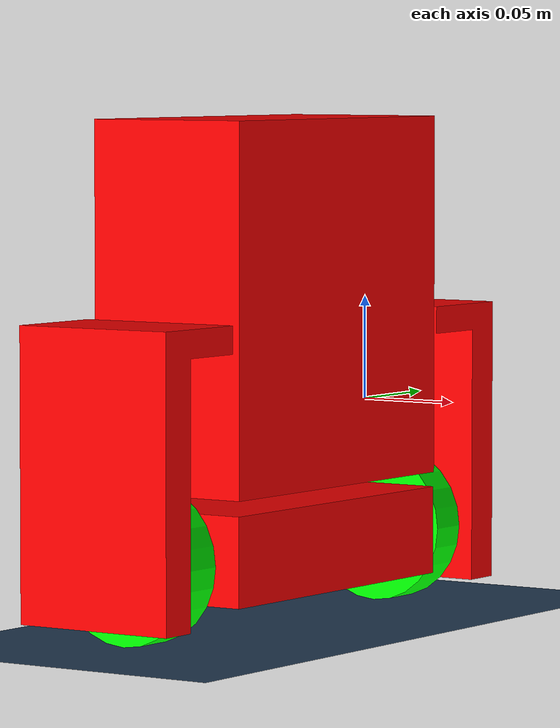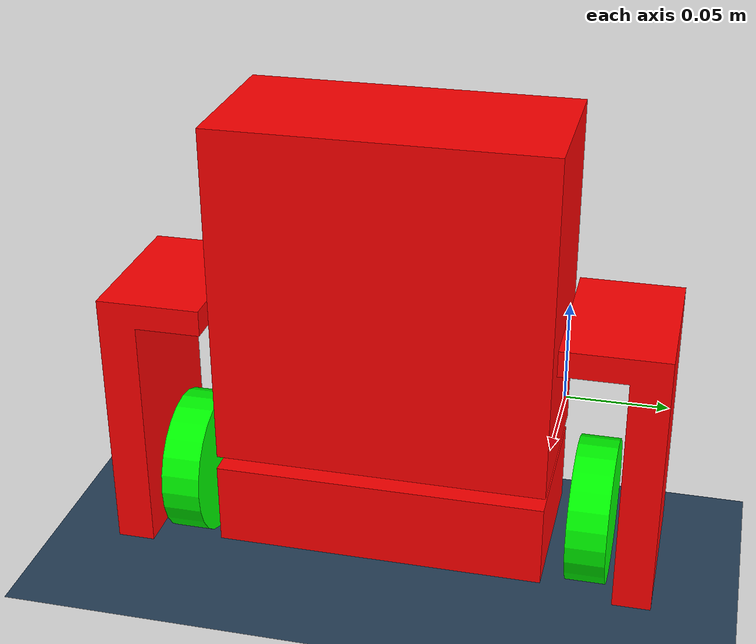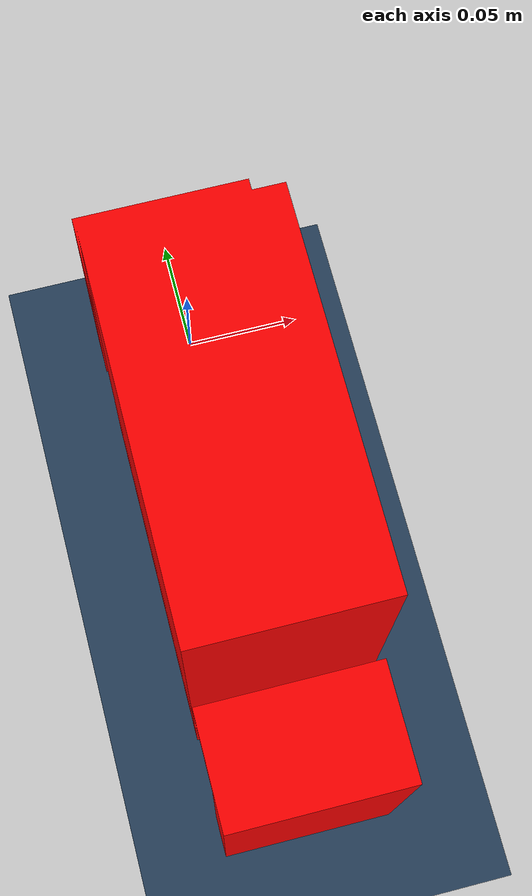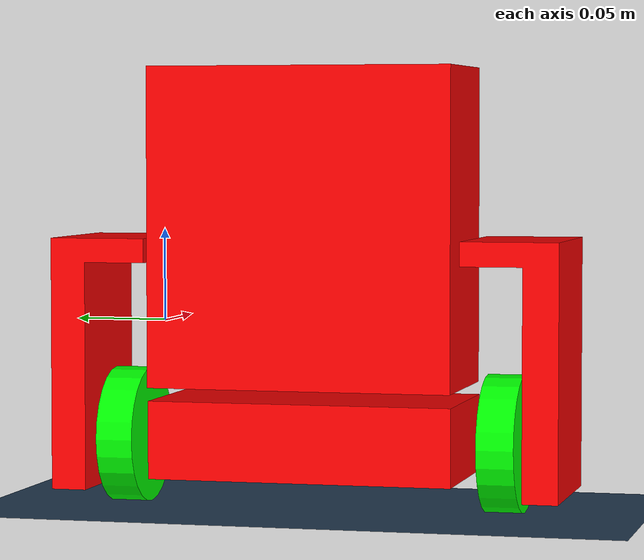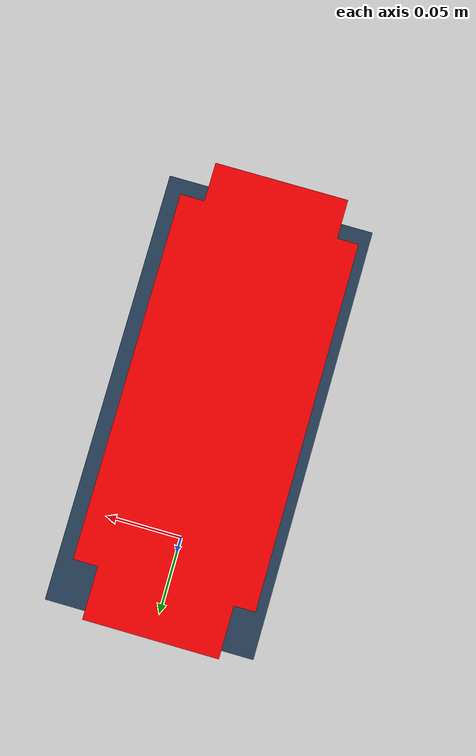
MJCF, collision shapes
<mujoco model="robot scene">
  <compiler angle="radian"/>
  <option timestep="0.000025"/>

  <include file="robot_cad.xml"/>

  <statistic center="0 0 0.1" extent="0.8"/>

  <visual>
    <headlight diffuse="0.6 0.6 0.6" ambient="0.3 0.3 0.3" specular="0 0 0"/>
    <rgba haze="0.15 0.25 0.35 1"/>
    <global azimuth="120" elevation="-20"/>
  </visual>

  <asset>
    <texture type="skybox" builtin="gradient" rgb1="0.8 0.8 0.8" rgb2="0 0 0" width="512" height="3072"/>
    <texture type="2d" name="groundplane" builtin="checker" mark="edge" rgb1="0.2 0.3 0.4" rgb2="0.1 0.2 0.3"
      markrgb="0.8 0.8 0.8" width="300" height="300"/>
    <material name="groundplane" texture="groundplane" texuniform="true" texrepeat="5 5" reflectance="0.2"/>
    <texture type="2d" name="wheel_texture" builtin="checker" mark="edge" rgb1="0.0 0.0 0.0" rgb2="0.2 0.2 0.2"
      markrgb="0.3 0.3 0.3" width="300" height="300"/>
    <material name="wheel_material" texture="wheel_texture" texuniform="true" texrepeat="5 5"/>
  </asset>

  <worldbody>
    <light pos="0 0 1.5" dir="-0.5 -0.5 -1" directional="true"/>
    <geom name="floor" size="0 0 0.05" pos="0 0 -0.1" type="plane" material="groundplane"/>
  </worldbody>

  <contact>
    <exclude body1="robot_body" body2="l_wheel"/>
    <exclude body1="robot_body" body2="r_wheel"/>

    <pair geom1="floor" geom2="l_wheel_geom" friction="0.4 0.4 0.07 0.001 0.001"/>
    <pair geom1="floor" geom2="r_wheel_geom" friction="0.4 0.4 0.07 0.001 0.001"/>
  </contact>

</mujoco>

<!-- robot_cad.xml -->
<mujoco model="balance_cad">

    <asset>
      <mesh name="base_link_mesh"
            file="meshes/balancing_robot_combined/base_link.STL"/>
      <mesh name="base_collision_mesh"
            file="meshes/balancing_robot_combined/base_collision_link.STL"/>
      <mesh name="left_wheel_visual_mesh"
            file="meshes/balancing_robot_combined/left_wheel_Link.STL"/>
      <mesh name="right_wheel_visual_mesh"
            file="meshes/balancing_robot_combined/right_wheel_Link.STL"/>
    </asset>

    <worldbody>
      <body name="robot_body" pos = "0 0 0.138">
        <joint name="robot_body_joint" type="free"/>

        <inertial pos="0 0.0 0.057"
                  quat="0.707107 0 0 0.707107"
                  mass="0.514"
                  diaginertia="0.001311 0.0012568 0.000487"/>

        <!-- 기존 collision 유지 -->
        <geom name="base_collision_geom"
              type="mesh"
              mesh="base_collision_mesh"
              rgba = "1 0 0 0.4"/>

        <geom name="base_visual_geom"
              type="mesh"
              mesh="base_link_mesh"
              contype="0"
              rgba = "0.8 0.8 0.8 0.25"
              conaffinity="0"/>

        <body name="l_wheel" pos="0 0.026 -0.201">
          <inertial pos="0 0 0"
                    quat="0.5 0.5 -0.5 0.5"
                    mass="0.032"
                    diaginertia="2.3e-05 1.3e-05 1.3e-05"/>
          <joint name="torso_l_wheel"
                type="hinge"
                pos="0 0 0"
                axis="0 -1 0"
                actuatorfrcrange="-5 5"
                damping="0.1"/>
          <geom name="l_wheel_geom"
                pos="0 -0.008 0"
                size="0.037 0.010"
                quat="0.707107 0.707107 0 0"
                type="cylinder"
                rgba="0 1 0 0.6"
                material="wheel_material"/>
          <geom name="l_wheel_visual_geom"
                type="mesh"
                mesh="left_wheel_visual_mesh"
                contype="0"
                rgba = "0.8 0.8 0.8 0.25"
                conaffinity="0"/>
        </body>

        <body name="r_wheel" pos="0 -0.198 -0.201">
          <inertial pos="0 0 0"
                    quat="0.5 0.5 -0.5 0.5"
                    mass="0.032"
                    diaginertia="2.3e-05 1.3e-05 1.3e-05"/>
          <joint name="torso_r_wheel"
                type="hinge"
                pos="0 0 0"
                axis="0 1 0"
                actuatorfrcrange="-5 5"
                damping="0.1"/>
          <geom name="r_wheel_geom"
                pos="0 0.008 0"
                size="0.037 0.010"
                quat="0.707107 0.707107 0 0"
                type="cylinder"
                rgba="0 1 0 0.6"
                material="wheel_material"/>
          <geom name="r_wheel_visual_geom"
                type="mesh"
                mesh="right_wheel_visual_mesh"
                contype="0"
                rgba = "0.8 0.8 0.8 0.25"
                conaffinity="0"/>
        </body>

      </body>
    </worldbody>

    <actuator>
      <velocity name="motor_l_wheel" joint="torso_l_wheel" gear="1" kv="0.9"/>
      <velocity name="motor_r_wheel" joint="torso_r_wheel" gear="1" kv="0.9"/>
    </actuator>

  </mujoco>
